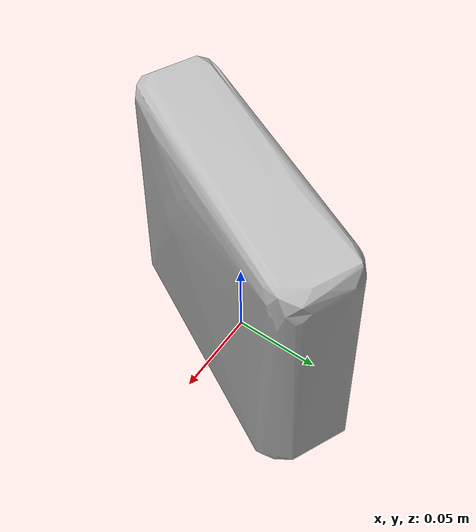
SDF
<?xml version='1.0'?>
<sdf version="1.4">
  <model name="quaker_chewy_dipps_peanut_butter_chocolate">
    <static>false</static>
    <link name="link">
      <inertial>
        <pose>0.011245568766673469 0.007547911213318316 0.0741647467148637 1.6056082840218018 -0.011620994836183767 2.6640984119978492</pose>
        <mass>0.10262827530454079</mass>
        <inertia>
          <ixx>0.00035191767534094553</ixx>
          <ixy>-1.9015309861488052e-21</ixy>
          <ixz>4.468316234615492e-20</ixz>
          <iyy>0.00020551479676701625</iyy>
          <iyz>9.558848749135612e-22</iyz>
          <izz>0.00018666470263212597</izz>
        </inertia>
      </inertial>
      <collision name="collision">
        <geometry>
          <mesh>
            <!-- Use a downsampled mesh for collisions -->
            <uri>model:///quaker_chewy_dipps_peanut_butter_chocolate/quaker_chewy_dipps_peanut_butter_chocolate_250_collision.obj</uri>
	        </mesh>
        </geometry>
        <surface>
      </surface>
      </collision>
      <visual name="visual">
        <geometry>
          <mesh>
            <uri>model:///quaker_chewy_dipps_peanut_butter_chocolate/optimized_tsdf_texture_mapped_mesh.obj</uri>
	        </mesh>
        </geometry>
        <material>
          <script>
            <uri>model:///quaker_chewy_dipps_peanut_butter_chocolate/quaker_chewy_dipps_peanut_butter_chocolate.material</uri>
            <name>quaker_chewy_dipps_peanut_butter_chocolate</name>
          </script>
        </material>
      </visual>
    </link>
  </model>
</sdf>
